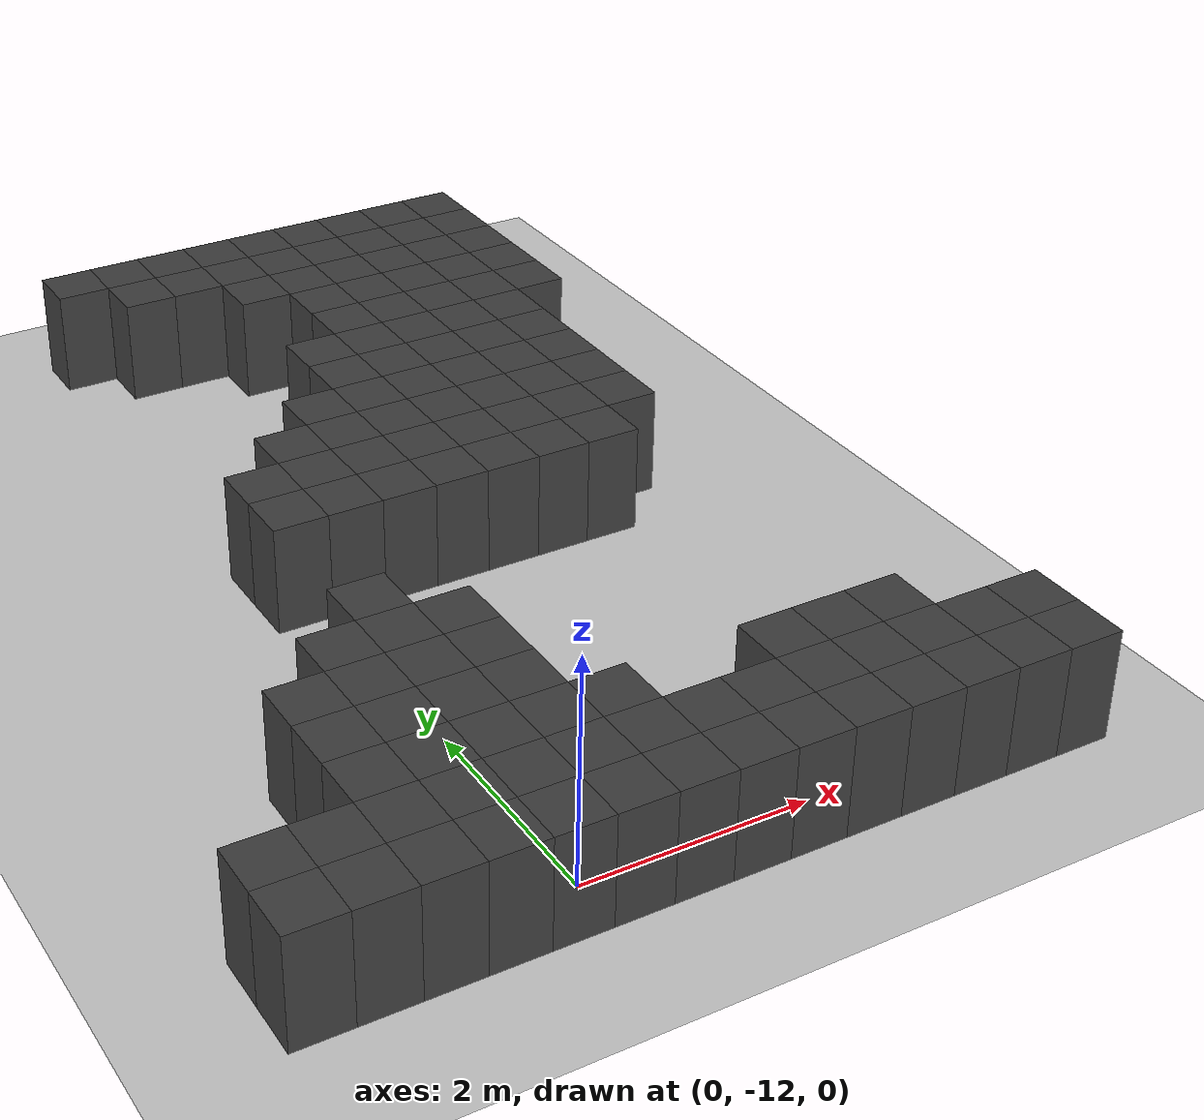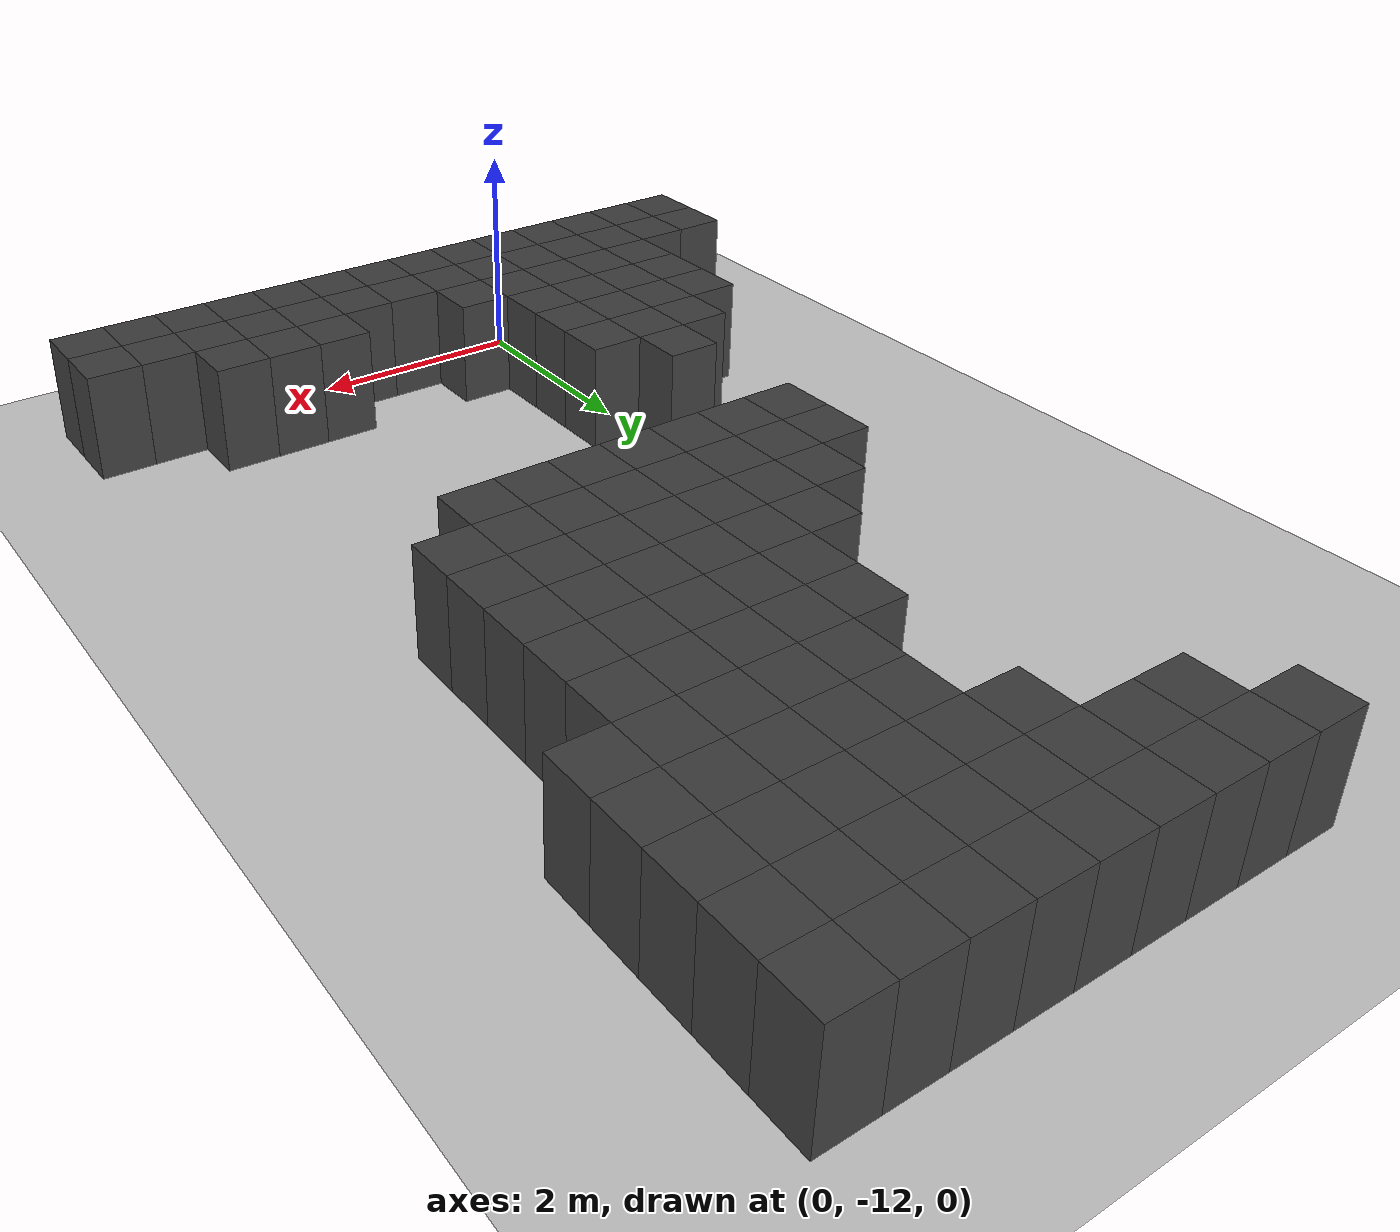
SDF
<sdf version="1.7">
 <world name="map_9705">
  <model name="ground_plane">
   <static>true</static>
   <link name="link">
    <collision name="collision">
     <geometry><plane><normal>0 0 1</normal><size>200 200</size></plane></geometry>
    </collision>
    <visual name="visual">
     <geometry><plane><normal>0 0 1</normal><size>200 200</size></plane></geometry>
     <material><ambient>0.8 0.8 0.8 1</ambient><diffuse>0.8 0.8 0.8 1</diffuse></material>
    </visual>
   </link>
  </model>
  <model name="maze_environment">
   <static>true</static>
   <link name="wall_679">
    <pose>-0.250 -2.750 0.500 0 0 0</pose>
    <collision name="col"><geometry><box><size>0.5 0.5 1.0</size></box></geometry></collision>
    <visual name="vis">
     <geometry><box><size>0.5 0.5 1.0</size></box></geometry>
     <material><ambient>0.15 0.15 0.15 1</ambient><diffuse>0.25 0.25 0.25 1</diffuse></material>
    </visual>
   </link>
   <link name="wall_680">
    <pose>0.250 -2.750 0.500 0 0 0</pose>
    <collision name="col"><geometry><box><size>0.5 0.5 1.0</size></box></geometry></collision>
    <visual name="vis">
     <geometry><box><size>0.5 0.5 1.0</size></box></geometry>
     <material><ambient>0.15 0.15 0.15 1</ambient><diffuse>0.25 0.25 0.25 1</diffuse></material>
    </visual>
   </link>
   <link name="wall_681">
    <pose>0.750 -2.750 0.500 0 0 0</pose>
    <collision name="col"><geometry><box><size>0.5 0.5 1.0</size></box></geometry></collision>
    <visual name="vis">
     <geometry><box><size>0.5 0.5 1.0</size></box></geometry>
     <material><ambient>0.15 0.15 0.15 1</ambient><diffuse>0.25 0.25 0.25 1</diffuse></material>
    </visual>
   </link>
   <link name="wall_682">
    <pose>1.250 -2.750 0.500 0 0 0</pose>
    <collision name="col"><geometry><box><size>0.5 0.5 1.0</size></box></geometry></collision>
    <visual name="vis">
     <geometry><box><size>0.5 0.5 1.0</size></box></geometry>
     <material><ambient>0.15 0.15 0.15 1</ambient><diffuse>0.25 0.25 0.25 1</diffuse></material>
    </visual>
   </link>
   <link name="wall_683">
    <pose>1.750 -2.750 0.500 0 0 0</pose>
    <collision name="col"><geometry><box><size>0.5 0.5 1.0</size></box></geometry></collision>
    <visual name="vis">
     <geometry><box><size>0.5 0.5 1.0</size></box></geometry>
     <material><ambient>0.15 0.15 0.15 1</ambient><diffuse>0.25 0.25 0.25 1</diffuse></material>
    </visual>
   </link>
   <link name="wall_684">
    <pose>2.250 -2.750 0.500 0 0 0</pose>
    <collision name="col"><geometry><box><size>0.5 0.5 1.0</size></box></geometry></collision>
    <visual name="vis">
     <geometry><box><size>0.5 0.5 1.0</size></box></geometry>
     <material><ambient>0.15 0.15 0.15 1</ambient><diffuse>0.25 0.25 0.25 1</diffuse></material>
    </visual>
   </link>
   <link name="wall_685">
    <pose>2.750 -2.750 0.500 0 0 0</pose>
    <collision name="col"><geometry><box><size>0.5 0.5 1.0</size></box></geometry></collision>
    <visual name="vis">
     <geometry><box><size>0.5 0.5 1.0</size></box></geometry>
     <material><ambient>0.15 0.15 0.15 1</ambient><diffuse>0.25 0.25 0.25 1</diffuse></material>
    </visual>
   </link>
   <link name="wall_686">
    <pose>3.250 -2.750 0.500 0 0 0</pose>
    <collision name="col"><geometry><box><size>0.5 0.5 1.0</size></box></geometry></collision>
    <visual name="vis">
     <geometry><box><size>0.5 0.5 1.0</size></box></geometry>
     <material><ambient>0.15 0.15 0.15 1</ambient><diffuse>0.25 0.25 0.25 1</diffuse></material>
    </visual>
   </link>
   <link name="wall_687">
    <pose>3.750 -2.750 0.500 0 0 0</pose>
    <collision name="col"><geometry><box><size>0.5 0.5 1.0</size></box></geometry></collision>
    <visual name="vis">
     <geometry><box><size>0.5 0.5 1.0</size></box></geometry>
     <material><ambient>0.15 0.15 0.15 1</ambient><diffuse>0.25 0.25 0.25 1</diffuse></material>
    </visual>
   </link>
   <link name="wall_698">
    <pose>0.250 -3.250 0.500 0 0 0</pose>
    <collision name="col"><geometry><box><size>0.5 0.5 1.0</size></box></geometry></collision>
    <visual name="vis">
     <geometry><box><size>0.5 0.5 1.0</size></box></geometry>
     <material><ambient>0.15 0.15 0.15 1</ambient><diffuse>0.25 0.25 0.25 1</diffuse></material>
    </visual>
   </link>
   <link name="wall_699">
    <pose>0.750 -3.250 0.500 0 0 0</pose>
    <collision name="col"><geometry><box><size>0.5 0.5 1.0</size></box></geometry></collision>
    <visual name="vis">
     <geometry><box><size>0.5 0.5 1.0</size></box></geometry>
     <material><ambient>0.15 0.15 0.15 1</ambient><diffuse>0.25 0.25 0.25 1</diffuse></material>
    </visual>
   </link>
   <link name="wall_700">
    <pose>1.250 -3.250 0.500 0 0 0</pose>
    <collision name="col"><geometry><box><size>0.5 0.5 1.0</size></box></geometry></collision>
    <visual name="vis">
     <geometry><box><size>0.5 0.5 1.0</size></box></geometry>
     <material><ambient>0.15 0.15 0.15 1</ambient><diffuse>0.25 0.25 0.25 1</diffuse></material>
    </visual>
   </link>
   <link name="wall_701">
    <pose>1.750 -3.250 0.500 0 0 0</pose>
    <collision name="col"><geometry><box><size>0.5 0.5 1.0</size></box></geometry></collision>
    <visual name="vis">
     <geometry><box><size>0.5 0.5 1.0</size></box></geometry>
     <material><ambient>0.15 0.15 0.15 1</ambient><diffuse>0.25 0.25 0.25 1</diffuse></material>
    </visual>
   </link>
   <link name="wall_702">
    <pose>2.250 -3.250 0.500 0 0 0</pose>
    <collision name="col"><geometry><box><size>0.5 0.5 1.0</size></box></geometry></collision>
    <visual name="vis">
     <geometry><box><size>0.5 0.5 1.0</size></box></geometry>
     <material><ambient>0.15 0.15 0.15 1</ambient><diffuse>0.25 0.25 0.25 1</diffuse></material>
    </visual>
   </link>
   <link name="wall_703">
    <pose>2.750 -3.250 0.500 0 0 0</pose>
    <collision name="col"><geometry><box><size>0.5 0.5 1.0</size></box></geometry></collision>
    <visual name="vis">
     <geometry><box><size>0.5 0.5 1.0</size></box></geometry>
     <material><ambient>0.15 0.15 0.15 1</ambient><diffuse>0.25 0.25 0.25 1</diffuse></material>
    </visual>
   </link>
   <link name="wall_704">
    <pose>3.250 -3.250 0.500 0 0 0</pose>
    <collision name="col"><geometry><box><size>0.5 0.5 1.0</size></box></geometry></collision>
    <visual name="vis">
     <geometry><box><size>0.5 0.5 1.0</size></box></geometry>
     <material><ambient>0.15 0.15 0.15 1</ambient><diffuse>0.25 0.25 0.25 1</diffuse></material>
    </visual>
   </link>
   <link name="wall_705">
    <pose>3.750 -3.250 0.500 0 0 0</pose>
    <collision name="col"><geometry><box><size>0.5 0.5 1.0</size></box></geometry></collision>
    <visual name="vis">
     <geometry><box><size>0.5 0.5 1.0</size></box></geometry>
     <material><ambient>0.15 0.15 0.15 1</ambient><diffuse>0.25 0.25 0.25 1</diffuse></material>
    </visual>
   </link>
   <link name="wall_711">
    <pose>1.250 -3.750 0.500 0 0 0</pose>
    <collision name="col"><geometry><box><size>0.5 0.5 1.0</size></box></geometry></collision>
    <visual name="vis">
     <geometry><box><size>0.5 0.5 1.0</size></box></geometry>
     <material><ambient>0.15 0.15 0.15 1</ambient><diffuse>0.25 0.25 0.25 1</diffuse></material>
    </visual>
   </link>
   <link name="wall_712">
    <pose>1.750 -3.750 0.500 0 0 0</pose>
    <collision name="col"><geometry><box><size>0.5 0.5 1.0</size></box></geometry></collision>
    <visual name="vis">
     <geometry><box><size>0.5 0.5 1.0</size></box></geometry>
     <material><ambient>0.15 0.15 0.15 1</ambient><diffuse>0.25 0.25 0.25 1</diffuse></material>
    </visual>
   </link>
   <link name="wall_713">
    <pose>2.250 -3.750 0.500 0 0 0</pose>
    <collision name="col"><geometry><box><size>0.5 0.5 1.0</size></box></geometry></collision>
    <visual name="vis">
     <geometry><box><size>0.5 0.5 1.0</size></box></geometry>
     <material><ambient>0.15 0.15 0.15 1</ambient><diffuse>0.25 0.25 0.25 1</diffuse></material>
    </visual>
   </link>
   <link name="wall_714">
    <pose>2.750 -3.750 0.500 0 0 0</pose>
    <collision name="col"><geometry><box><size>0.5 0.5 1.0</size></box></geometry></collision>
    <visual name="vis">
     <geometry><box><size>0.5 0.5 1.0</size></box></geometry>
     <material><ambient>0.15 0.15 0.15 1</ambient><diffuse>0.25 0.25 0.25 1</diffuse></material>
    </visual>
   </link>
   <link name="wall_715">
    <pose>3.250 -3.750 0.500 0 0 0</pose>
    <collision name="col"><geometry><box><size>0.5 0.5 1.0</size></box></geometry></collision>
    <visual name="vis">
     <geometry><box><size>0.5 0.5 1.0</size></box></geometry>
     <material><ambient>0.15 0.15 0.15 1</ambient><diffuse>0.25 0.25 0.25 1</diffuse></material>
    </visual>
   </link>
   <link name="wall_716">
    <pose>3.750 -3.750 0.500 0 0 0</pose>
    <collision name="col"><geometry><box><size>0.5 0.5 1.0</size></box></geometry></collision>
    <visual name="vis">
     <geometry><box><size>0.5 0.5 1.0</size></box></geometry>
     <material><ambient>0.15 0.15 0.15 1</ambient><diffuse>0.25 0.25 0.25 1</diffuse></material>
    </visual>
   </link>
   <link name="wall_721">
    <pose>1.750 -4.250 0.500 0 0 0</pose>
    <collision name="col"><geometry><box><size>0.5 0.5 1.0</size></box></geometry></collision>
    <visual name="vis">
     <geometry><box><size>0.5 0.5 1.0</size></box></geometry>
     <material><ambient>0.15 0.15 0.15 1</ambient><diffuse>0.25 0.25 0.25 1</diffuse></material>
    </visual>
   </link>
   <link name="wall_722">
    <pose>2.250 -4.250 0.500 0 0 0</pose>
    <collision name="col"><geometry><box><size>0.5 0.5 1.0</size></box></geometry></collision>
    <visual name="vis">
     <geometry><box><size>0.5 0.5 1.0</size></box></geometry>
     <material><ambient>0.15 0.15 0.15 1</ambient><diffuse>0.25 0.25 0.25 1</diffuse></material>
    </visual>
   </link>
   <link name="wall_723">
    <pose>2.750 -4.250 0.500 0 0 0</pose>
    <collision name="col"><geometry><box><size>0.5 0.5 1.0</size></box></geometry></collision>
    <visual name="vis">
     <geometry><box><size>0.5 0.5 1.0</size></box></geometry>
     <material><ambient>0.15 0.15 0.15 1</ambient><diffuse>0.25 0.25 0.25 1</diffuse></material>
    </visual>
   </link>
   <link name="wall_724">
    <pose>3.250 -4.250 0.500 0 0 0</pose>
    <collision name="col"><geometry><box><size>0.5 0.5 1.0</size></box></geometry></collision>
    <visual name="vis">
     <geometry><box><size>0.5 0.5 1.0</size></box></geometry>
     <material><ambient>0.15 0.15 0.15 1</ambient><diffuse>0.25 0.25 0.25 1</diffuse></material>
    </visual>
   </link>
   <link name="wall_725">
    <pose>3.750 -4.250 0.500 0 0 0</pose>
    <collision name="col"><geometry><box><size>0.5 0.5 1.0</size></box></geometry></collision>
    <visual name="vis">
     <geometry><box><size>0.5 0.5 1.0</size></box></geometry>
     <material><ambient>0.15 0.15 0.15 1</ambient><diffuse>0.25 0.25 0.25 1</diffuse></material>
    </visual>
   </link>
   <link name="wall_729">
    <pose>1.750 -4.750 0.500 0 0 0</pose>
    <collision name="col"><geometry><box><size>0.5 0.5 1.0</size></box></geometry></collision>
    <visual name="vis">
     <geometry><box><size>0.5 0.5 1.0</size></box></geometry>
     <material><ambient>0.15 0.15 0.15 1</ambient><diffuse>0.25 0.25 0.25 1</diffuse></material>
    </visual>
   </link>
   <link name="wall_730">
    <pose>2.250 -4.750 0.500 0 0 0</pose>
    <collision name="col"><geometry><box><size>0.5 0.5 1.0</size></box></geometry></collision>
    <visual name="vis">
     <geometry><box><size>0.5 0.5 1.0</size></box></geometry>
     <material><ambient>0.15 0.15 0.15 1</ambient><diffuse>0.25 0.25 0.25 1</diffuse></material>
    </visual>
   </link>
   <link name="wall_731">
    <pose>2.750 -4.750 0.500 0 0 0</pose>
    <collision name="col"><geometry><box><size>0.5 0.5 1.0</size></box></geometry></collision>
    <visual name="vis">
     <geometry><box><size>0.5 0.5 1.0</size></box></geometry>
     <material><ambient>0.15 0.15 0.15 1</ambient><diffuse>0.25 0.25 0.25 1</diffuse></material>
    </visual>
   </link>
   <link name="wall_732">
    <pose>3.250 -4.750 0.500 0 0 0</pose>
    <collision name="col"><geometry><box><size>0.5 0.5 1.0</size></box></geometry></collision>
    <visual name="vis">
     <geometry><box><size>0.5 0.5 1.0</size></box></geometry>
     <material><ambient>0.15 0.15 0.15 1</ambient><diffuse>0.25 0.25 0.25 1</diffuse></material>
    </visual>
   </link>
   <link name="wall_733">
    <pose>3.750 -4.750 0.500 0 0 0</pose>
    <collision name="col"><geometry><box><size>0.5 0.5 1.0</size></box></geometry></collision>
    <visual name="vis">
     <geometry><box><size>0.5 0.5 1.0</size></box></geometry>
     <material><ambient>0.15 0.15 0.15 1</ambient><diffuse>0.25 0.25 0.25 1</diffuse></material>
    </visual>
   </link>
   <link name="wall_741">
    <pose>1.250 -5.250 0.500 0 0 0</pose>
    <collision name="col"><geometry><box><size>0.5 0.5 1.0</size></box></geometry></collision>
    <visual name="vis">
     <geometry><box><size>0.5 0.5 1.0</size></box></geometry>
     <material><ambient>0.15 0.15 0.15 1</ambient><diffuse>0.25 0.25 0.25 1</diffuse></material>
    </visual>
   </link>
   <link name="wall_742">
    <pose>1.750 -5.250 0.500 0 0 0</pose>
    <collision name="col"><geometry><box><size>0.5 0.5 1.0</size></box></geometry></collision>
    <visual name="vis">
     <geometry><box><size>0.5 0.5 1.0</size></box></geometry>
     <material><ambient>0.15 0.15 0.15 1</ambient><diffuse>0.25 0.25 0.25 1</diffuse></material>
    </visual>
   </link>
   <link name="wall_743">
    <pose>2.250 -5.250 0.500 0 0 0</pose>
    <collision name="col"><geometry><box><size>0.5 0.5 1.0</size></box></geometry></collision>
    <visual name="vis">
     <geometry><box><size>0.5 0.5 1.0</size></box></geometry>
     <material><ambient>0.15 0.15 0.15 1</ambient><diffuse>0.25 0.25 0.25 1</diffuse></material>
    </visual>
   </link>
   <link name="wall_744">
    <pose>2.750 -5.250 0.500 0 0 0</pose>
    <collision name="col"><geometry><box><size>0.5 0.5 1.0</size></box></geometry></collision>
    <visual name="vis">
     <geometry><box><size>0.5 0.5 1.0</size></box></geometry>
     <material><ambient>0.15 0.15 0.15 1</ambient><diffuse>0.25 0.25 0.25 1</diffuse></material>
    </visual>
   </link>
   <link name="wall_745">
    <pose>3.250 -5.250 0.500 0 0 0</pose>
    <collision name="col"><geometry><box><size>0.5 0.5 1.0</size></box></geometry></collision>
    <visual name="vis">
     <geometry><box><size>0.5 0.5 1.0</size></box></geometry>
     <material><ambient>0.15 0.15 0.15 1</ambient><diffuse>0.25 0.25 0.25 1</diffuse></material>
    </visual>
   </link>
   <link name="wall_758">
    <pose>1.250 -5.750 0.500 0 0 0</pose>
    <collision name="col"><geometry><box><size>0.5 0.5 1.0</size></box></geometry></collision>
    <visual name="vis">
     <geometry><box><size>0.5 0.5 1.0</size></box></geometry>
     <material><ambient>0.15 0.15 0.15 1</ambient><diffuse>0.25 0.25 0.25 1</diffuse></material>
    </visual>
   </link>
   <link name="wall_759">
    <pose>1.750 -5.750 0.500 0 0 0</pose>
    <collision name="col"><geometry><box><size>0.5 0.5 1.0</size></box></geometry></collision>
    <visual name="vis">
     <geometry><box><size>0.5 0.5 1.0</size></box></geometry>
     <material><ambient>0.15 0.15 0.15 1</ambient><diffuse>0.25 0.25 0.25 1</diffuse></material>
    </visual>
   </link>
   <link name="wall_760">
    <pose>2.250 -5.750 0.500 0 0 0</pose>
    <collision name="col"><geometry><box><size>0.5 0.5 1.0</size></box></geometry></collision>
    <visual name="vis">
     <geometry><box><size>0.5 0.5 1.0</size></box></geometry>
     <material><ambient>0.15 0.15 0.15 1</ambient><diffuse>0.25 0.25 0.25 1</diffuse></material>
    </visual>
   </link>
   <link name="wall_761">
    <pose>2.750 -5.750 0.500 0 0 0</pose>
    <collision name="col"><geometry><box><size>0.5 0.5 1.0</size></box></geometry></collision>
    <visual name="vis">
     <geometry><box><size>0.5 0.5 1.0</size></box></geometry>
     <material><ambient>0.15 0.15 0.15 1</ambient><diffuse>0.25 0.25 0.25 1</diffuse></material>
    </visual>
   </link>
   <link name="wall_762">
    <pose>3.250 -5.750 0.500 0 0 0</pose>
    <collision name="col"><geometry><box><size>0.5 0.5 1.0</size></box></geometry></collision>
    <visual name="vis">
     <geometry><box><size>0.5 0.5 1.0</size></box></geometry>
     <material><ambient>0.15 0.15 0.15 1</ambient><diffuse>0.25 0.25 0.25 1</diffuse></material>
    </visual>
   </link>
   <link name="wall_776">
    <pose>0.750 -6.250 0.500 0 0 0</pose>
    <collision name="col"><geometry><box><size>0.5 0.5 1.0</size></box></geometry></collision>
    <visual name="vis">
     <geometry><box><size>0.5 0.5 1.0</size></box></geometry>
     <material><ambient>0.15 0.15 0.15 1</ambient><diffuse>0.25 0.25 0.25 1</diffuse></material>
    </visual>
   </link>
   <link name="wall_777">
    <pose>1.250 -6.250 0.500 0 0 0</pose>
    <collision name="col"><geometry><box><size>0.5 0.5 1.0</size></box></geometry></collision>
    <visual name="vis">
     <geometry><box><size>0.5 0.5 1.0</size></box></geometry>
     <material><ambient>0.15 0.15 0.15 1</ambient><diffuse>0.25 0.25 0.25 1</diffuse></material>
    </visual>
   </link>
   <link name="wall_778">
    <pose>1.750 -6.250 0.500 0 0 0</pose>
    <collision name="col"><geometry><box><size>0.5 0.5 1.0</size></box></geometry></collision>
    <visual name="vis">
     <geometry><box><size>0.5 0.5 1.0</size></box></geometry>
     <material><ambient>0.15 0.15 0.15 1</ambient><diffuse>0.25 0.25 0.25 1</diffuse></material>
    </visual>
   </link>
   <link name="wall_779">
    <pose>2.250 -6.250 0.500 0 0 0</pose>
    <collision name="col"><geometry><box><size>0.5 0.5 1.0</size></box></geometry></collision>
    <visual name="vis">
     <geometry><box><size>0.5 0.5 1.0</size></box></geometry>
     <material><ambient>0.15 0.15 0.15 1</ambient><diffuse>0.25 0.25 0.25 1</diffuse></material>
    </visual>
   </link>
   <link name="wall_780">
    <pose>2.750 -6.250 0.500 0 0 0</pose>
    <collision name="col"><geometry><box><size>0.5 0.5 1.0</size></box></geometry></collision>
    <visual name="vis">
     <geometry><box><size>0.5 0.5 1.0</size></box></geometry>
     <material><ambient>0.15 0.15 0.15 1</ambient><diffuse>0.25 0.25 0.25 1</diffuse></material>
    </visual>
   </link>
   <link name="wall_781">
    <pose>3.250 -6.250 0.500 0 0 0</pose>
    <collision name="col"><geometry><box><size>0.5 0.5 1.0</size></box></geometry></collision>
    <visual name="vis">
     <geometry><box><size>0.5 0.5 1.0</size></box></geometry>
     <material><ambient>0.15 0.15 0.15 1</ambient><diffuse>0.25 0.25 0.25 1</diffuse></material>
    </visual>
   </link>
   <link name="wall_795">
    <pose>0.250 -6.750 0.500 0 0 0</pose>
    <collision name="col"><geometry><box><size>0.5 0.5 1.0</size></box></geometry></collision>
    <visual name="vis">
     <geometry><box><size>0.5 0.5 1.0</size></box></geometry>
     <material><ambient>0.15 0.15 0.15 1</ambient><diffuse>0.25 0.25 0.25 1</diffuse></material>
    </visual>
   </link>
   <link name="wall_796">
    <pose>0.750 -6.750 0.500 0 0 0</pose>
    <collision name="col"><geometry><box><size>0.5 0.5 1.0</size></box></geometry></collision>
    <visual name="vis">
     <geometry><box><size>0.5 0.5 1.0</size></box></geometry>
     <material><ambient>0.15 0.15 0.15 1</ambient><diffuse>0.25 0.25 0.25 1</diffuse></material>
    </visual>
   </link>
   <link name="wall_797">
    <pose>1.250 -6.750 0.500 0 0 0</pose>
    <collision name="col"><geometry><box><size>0.5 0.5 1.0</size></box></geometry></collision>
    <visual name="vis">
     <geometry><box><size>0.5 0.5 1.0</size></box></geometry>
     <material><ambient>0.15 0.15 0.15 1</ambient><diffuse>0.25 0.25 0.25 1</diffuse></material>
    </visual>
   </link>
   <link name="wall_798">
    <pose>1.750 -6.750 0.500 0 0 0</pose>
    <collision name="col"><geometry><box><size>0.5 0.5 1.0</size></box></geometry></collision>
    <visual name="vis">
     <geometry><box><size>0.5 0.5 1.0</size></box></geometry>
     <material><ambient>0.15 0.15 0.15 1</ambient><diffuse>0.25 0.25 0.25 1</diffuse></material>
    </visual>
   </link>
   <link name="wall_799">
    <pose>2.250 -6.750 0.500 0 0 0</pose>
    <collision name="col"><geometry><box><size>0.5 0.5 1.0</size></box></geometry></collision>
    <visual name="vis">
     <geometry><box><size>0.5 0.5 1.0</size></box></geometry>
     <material><ambient>0.15 0.15 0.15 1</ambient><diffuse>0.25 0.25 0.25 1</diffuse></material>
    </visual>
   </link>
   <link name="wall_800">
    <pose>2.750 -6.750 0.500 0 0 0</pose>
    <collision name="col"><geometry><box><size>0.5 0.5 1.0</size></box></geometry></collision>
    <visual name="vis">
     <geometry><box><size>0.5 0.5 1.0</size></box></geometry>
     <material><ambient>0.15 0.15 0.15 1</ambient><diffuse>0.25 0.25 0.25 1</diffuse></material>
    </visual>
   </link>
   <link name="wall_801">
    <pose>3.250 -6.750 0.500 0 0 0</pose>
    <collision name="col"><geometry><box><size>0.5 0.5 1.0</size></box></geometry></collision>
    <visual name="vis">
     <geometry><box><size>0.5 0.5 1.0</size></box></geometry>
     <material><ambient>0.15 0.15 0.15 1</ambient><diffuse>0.25 0.25 0.25 1</diffuse></material>
    </visual>
   </link>
   <link name="wall_820">
    <pose>-0.250 -7.250 0.500 0 0 0</pose>
    <collision name="col"><geometry><box><size>0.5 0.5 1.0</size></box></geometry></collision>
    <visual name="vis">
     <geometry><box><size>0.5 0.5 1.0</size></box></geometry>
     <material><ambient>0.15 0.15 0.15 1</ambient><diffuse>0.25 0.25 0.25 1</diffuse></material>
    </visual>
   </link>
   <link name="wall_821">
    <pose>0.250 -7.250 0.500 0 0 0</pose>
    <collision name="col"><geometry><box><size>0.5 0.5 1.0</size></box></geometry></collision>
    <visual name="vis">
     <geometry><box><size>0.5 0.5 1.0</size></box></geometry>
     <material><ambient>0.15 0.15 0.15 1</ambient><diffuse>0.25 0.25 0.25 1</diffuse></material>
    </visual>
   </link>
   <link name="wall_822">
    <pose>0.750 -7.250 0.500 0 0 0</pose>
    <collision name="col"><geometry><box><size>0.5 0.5 1.0</size></box></geometry></collision>
    <visual name="vis">
     <geometry><box><size>0.5 0.5 1.0</size></box></geometry>
     <material><ambient>0.15 0.15 0.15 1</ambient><diffuse>0.25 0.25 0.25 1</diffuse></material>
    </visual>
   </link>
   <link name="wall_823">
    <pose>1.250 -7.250 0.500 0 0 0</pose>
    <collision name="col"><geometry><box><size>0.5 0.5 1.0</size></box></geometry></collision>
    <visual name="vis">
     <geometry><box><size>0.5 0.5 1.0</size></box></geometry>
     <material><ambient>0.15 0.15 0.15 1</ambient><diffuse>0.25 0.25 0.25 1</diffuse></material>
    </visual>
   </link>
   <link name="wall_824">
    <pose>1.750 -7.250 0.500 0 0 0</pose>
    <collision name="col"><geometry><box><size>0.5 0.5 1.0</size></box></geometry></collision>
    <visual name="vis">
     <geometry><box><size>0.5 0.5 1.0</size></box></geometry>
     <material><ambient>0.15 0.15 0.15 1</ambient><diffuse>0.25 0.25 0.25 1</diffuse></material>
    </visual>
   </link>
   <link name="wall_825">
    <pose>2.250 -7.250 0.500 0 0 0</pose>
    <collision name="col"><geometry><box><size>0.5 0.5 1.0</size></box></geometry></collision>
    <visual name="vis">
     <geometry><box><size>0.5 0.5 1.0</size></box></geometry>
     <material><ambient>0.15 0.15 0.15 1</ambient><diffuse>0.25 0.25 0.25 1</diffuse></material>
    </visual>
   </link>
   <link name="wall_826">
    <pose>2.750 -7.250 0.500 0 0 0</pose>
    <collision name="col"><geometry><box><size>0.5 0.5 1.0</size></box></geometry></collision>
    <visual name="vis">
     <geometry><box><size>0.5 0.5 1.0</size></box></geometry>
     <material><ambient>0.15 0.15 0.15 1</ambient><diffuse>0.25 0.25 0.25 1</diffuse></material>
    </visual>
   </link>
   <link name="wall_827">
    <pose>3.250 -7.250 0.500 0 0 0</pose>
    <collision name="col"><geometry><box><size>0.5 0.5 1.0</size></box></geometry></collision>
    <visual name="vis">
     <geometry><box><size>0.5 0.5 1.0</size></box></geometry>
     <material><ambient>0.15 0.15 0.15 1</ambient><diffuse>0.25 0.25 0.25 1</diffuse></material>
    </visual>
   </link>
   <link name="wall_845">
    <pose>-0.250 -7.750 0.500 0 0 0</pose>
    <collision name="col"><geometry><box><size>0.5 0.5 1.0</size></box></geometry></collision>
    <visual name="vis">
     <geometry><box><size>0.5 0.5 1.0</size></box></geometry>
     <material><ambient>0.15 0.15 0.15 1</ambient><diffuse>0.25 0.25 0.25 1</diffuse></material>
    </visual>
   </link>
   <link name="wall_846">
    <pose>0.250 -7.750 0.500 0 0 0</pose>
    <collision name="col"><geometry><box><size>0.5 0.5 1.0</size></box></geometry></collision>
    <visual name="vis">
     <geometry><box><size>0.5 0.5 1.0</size></box></geometry>
     <material><ambient>0.15 0.15 0.15 1</ambient><diffuse>0.25 0.25 0.25 1</diffuse></material>
    </visual>
   </link>
   <link name="wall_847">
    <pose>0.750 -7.750 0.500 0 0 0</pose>
    <collision name="col"><geometry><box><size>0.5 0.5 1.0</size></box></geometry></collision>
    <visual name="vis">
     <geometry><box><size>0.5 0.5 1.0</size></box></geometry>
     <material><ambient>0.15 0.15 0.15 1</ambient><diffuse>0.25 0.25 0.25 1</diffuse></material>
    </visual>
   </link>
   <link name="wall_848">
    <pose>1.250 -7.750 0.500 0 0 0</pose>
    <collision name="col"><geometry><box><size>0.5 0.5 1.0</size></box></geometry></collision>
    <visual name="vis">
     <geometry><box><size>0.5 0.5 1.0</size></box></geometry>
     <material><ambient>0.15 0.15 0.15 1</ambient><diffuse>0.25 0.25 0.25 1</diffuse></material>
    </visual>
   </link>
   <link name="wall_849">
    <pose>1.750 -7.750 0.500 0 0 0</pose>
    <collision name="col"><geometry><box><size>0.5 0.5 1.0</size></box></geometry></collision>
    <visual name="vis">
     <geometry><box><size>0.5 0.5 1.0</size></box></geometry>
     <material><ambient>0.15 0.15 0.15 1</ambient><diffuse>0.25 0.25 0.25 1</diffuse></material>
    </visual>
   </link>
   <link name="wall_850">
    <pose>2.250 -7.750 0.500 0 0 0</pose>
    <collision name="col"><geometry><box><size>0.5 0.5 1.0</size></box></geometry></collision>
    <visual name="vis">
     <geometry><box><size>0.5 0.5 1.0</size></box></geometry>
     <material><ambient>0.15 0.15 0.15 1</ambient><diffuse>0.25 0.25 0.25 1</diffuse></material>
    </visual>
   </link>
   <link name="wall_851">
    <pose>2.750 -7.750 0.500 0 0 0</pose>
    <collision name="col"><geometry><box><size>0.5 0.5 1.0</size></box></geometry></collision>
    <visual name="vis">
     <geometry><box><size>0.5 0.5 1.0</size></box></geometry>
     <material><ambient>0.15 0.15 0.15 1</ambient><diffuse>0.25 0.25 0.25 1</diffuse></material>
    </visual>
   </link>
   <link name="wall_891">
    <pose>-0.250 -9.250 0.500 0 0 0</pose>
    <collision name="col"><geometry><box><size>0.5 0.5 1.0</size></box></geometry></collision>
    <visual name="vis">
     <geometry><box><size>0.5 0.5 1.0</size></box></geometry>
     <material><ambient>0.15 0.15 0.15 1</ambient><diffuse>0.25 0.25 0.25 1</diffuse></material>
    </visual>
   </link>
   <link name="wall_903">
    <pose>-0.750 -9.750 0.500 0 0 0</pose>
    <collision name="col"><geometry><box><size>0.5 0.5 1.0</size></box></geometry></collision>
    <visual name="vis">
     <geometry><box><size>0.5 0.5 1.0</size></box></geometry>
     <material><ambient>0.15 0.15 0.15 1</ambient><diffuse>0.25 0.25 0.25 1</diffuse></material>
    </visual>
   </link>
   <link name="wall_904">
    <pose>-0.250 -9.750 0.500 0 0 0</pose>
    <collision name="col"><geometry><box><size>0.5 0.5 1.0</size></box></geometry></collision>
    <visual name="vis">
     <geometry><box><size>0.5 0.5 1.0</size></box></geometry>
     <material><ambient>0.15 0.15 0.15 1</ambient><diffuse>0.25 0.25 0.25 1</diffuse></material>
    </visual>
   </link>
   <link name="wall_905">
    <pose>0.250 -9.750 0.500 0 0 0</pose>
    <collision name="col"><geometry><box><size>0.5 0.5 1.0</size></box></geometry></collision>
    <visual name="vis">
     <geometry><box><size>0.5 0.5 1.0</size></box></geometry>
     <material><ambient>0.15 0.15 0.15 1</ambient><diffuse>0.25 0.25 0.25 1</diffuse></material>
    </visual>
   </link>
   <link name="wall_920">
    <pose>-1.250 -10.250 0.500 0 0 0</pose>
    <collision name="col"><geometry><box><size>0.5 0.5 1.0</size></box></geometry></collision>
    <visual name="vis">
     <geometry><box><size>0.5 0.5 1.0</size></box></geometry>
     <material><ambient>0.15 0.15 0.15 1</ambient><diffuse>0.25 0.25 0.25 1</diffuse></material>
    </visual>
   </link>
   <link name="wall_921">
    <pose>-0.750 -10.250 0.500 0 0 0</pose>
    <collision name="col"><geometry><box><size>0.5 0.5 1.0</size></box></geometry></collision>
    <visual name="vis">
     <geometry><box><size>0.5 0.5 1.0</size></box></geometry>
     <material><ambient>0.15 0.15 0.15 1</ambient><diffuse>0.25 0.25 0.25 1</diffuse></material>
    </visual>
   </link>
   <link name="wall_922">
    <pose>-0.250 -10.250 0.500 0 0 0</pose>
    <collision name="col"><geometry><box><size>0.5 0.5 1.0</size></box></geometry></collision>
    <visual name="vis">
     <geometry><box><size>0.5 0.5 1.0</size></box></geometry>
     <material><ambient>0.15 0.15 0.15 1</ambient><diffuse>0.25 0.25 0.25 1</diffuse></material>
    </visual>
   </link>
   <link name="wall_923">
    <pose>0.250 -10.250 0.500 0 0 0</pose>
    <collision name="col"><geometry><box><size>0.5 0.5 1.0</size></box></geometry></collision>
    <visual name="vis">
     <geometry><box><size>0.5 0.5 1.0</size></box></geometry>
     <material><ambient>0.15 0.15 0.15 1</ambient><diffuse>0.25 0.25 0.25 1</diffuse></material>
    </visual>
   </link>
   <link name="wall_940">
    <pose>-1.250 -10.750 0.500 0 0 0</pose>
    <collision name="col"><geometry><box><size>0.5 0.5 1.0</size></box></geometry></collision>
    <visual name="vis">
     <geometry><box><size>0.5 0.5 1.0</size></box></geometry>
     <material><ambient>0.15 0.15 0.15 1</ambient><diffuse>0.25 0.25 0.25 1</diffuse></material>
    </visual>
   </link>
   <link name="wall_941">
    <pose>-0.750 -10.750 0.500 0 0 0</pose>
    <collision name="col"><geometry><box><size>0.5 0.5 1.0</size></box></geometry></collision>
    <visual name="vis">
     <geometry><box><size>0.5 0.5 1.0</size></box></geometry>
     <material><ambient>0.15 0.15 0.15 1</ambient><diffuse>0.25 0.25 0.25 1</diffuse></material>
    </visual>
   </link>
   <link name="wall_942">
    <pose>-0.250 -10.750 0.500 0 0 0</pose>
    <collision name="col"><geometry><box><size>0.5 0.5 1.0</size></box></geometry></collision>
    <visual name="vis">
     <geometry><box><size>0.5 0.5 1.0</size></box></geometry>
     <material><ambient>0.15 0.15 0.15 1</ambient><diffuse>0.25 0.25 0.25 1</diffuse></material>
    </visual>
   </link>
   <link name="wall_943">
    <pose>0.250 -10.750 0.500 0 0 0</pose>
    <collision name="col"><geometry><box><size>0.5 0.5 1.0</size></box></geometry></collision>
    <visual name="vis">
     <geometry><box><size>0.5 0.5 1.0</size></box></geometry>
     <material><ambient>0.15 0.15 0.15 1</ambient><diffuse>0.25 0.25 0.25 1</diffuse></material>
    </visual>
   </link>
   <link name="wall_963">
    <pose>-1.250 -11.250 0.500 0 0 0</pose>
    <collision name="col"><geometry><box><size>0.5 0.5 1.0</size></box></geometry></collision>
    <visual name="vis">
     <geometry><box><size>0.5 0.5 1.0</size></box></geometry>
     <material><ambient>0.15 0.15 0.15 1</ambient><diffuse>0.25 0.25 0.25 1</diffuse></material>
    </visual>
   </link>
   <link name="wall_964">
    <pose>-0.750 -11.250 0.500 0 0 0</pose>
    <collision name="col"><geometry><box><size>0.5 0.5 1.0</size></box></geometry></collision>
    <visual name="vis">
     <geometry><box><size>0.5 0.5 1.0</size></box></geometry>
     <material><ambient>0.15 0.15 0.15 1</ambient><diffuse>0.25 0.25 0.25 1</diffuse></material>
    </visual>
   </link>
   <link name="wall_965">
    <pose>-0.250 -11.250 0.500 0 0 0</pose>
    <collision name="col"><geometry><box><size>0.5 0.5 1.0</size></box></geometry></collision>
    <visual name="vis">
     <geometry><box><size>0.5 0.5 1.0</size></box></geometry>
     <material><ambient>0.15 0.15 0.15 1</ambient><diffuse>0.25 0.25 0.25 1</diffuse></material>
    </visual>
   </link>
   <link name="wall_966">
    <pose>0.250 -11.250 0.500 0 0 0</pose>
    <collision name="col"><geometry><box><size>0.5 0.5 1.0</size></box></geometry></collision>
    <visual name="vis">
     <geometry><box><size>0.5 0.5 1.0</size></box></geometry>
     <material><ambient>0.15 0.15 0.15 1</ambient><diffuse>0.25 0.25 0.25 1</diffuse></material>
    </visual>
   </link>
   <link name="wall_967">
    <pose>0.750 -11.250 0.500 0 0 0</pose>
    <collision name="col"><geometry><box><size>0.5 0.5 1.0</size></box></geometry></collision>
    <visual name="vis">
     <geometry><box><size>0.5 0.5 1.0</size></box></geometry>
     <material><ambient>0.15 0.15 0.15 1</ambient><diffuse>0.25 0.25 0.25 1</diffuse></material>
    </visual>
   </link>
   <link name="wall_968">
    <pose>2.250 -11.250 0.500 0 0 0</pose>
    <collision name="col"><geometry><box><size>0.5 0.5 1.0</size></box></geometry></collision>
    <visual name="vis">
     <geometry><box><size>0.5 0.5 1.0</size></box></geometry>
     <material><ambient>0.15 0.15 0.15 1</ambient><diffuse>0.25 0.25 0.25 1</diffuse></material>
    </visual>
   </link>
   <link name="wall_969">
    <pose>2.750 -11.250 0.500 0 0 0</pose>
    <collision name="col"><geometry><box><size>0.5 0.5 1.0</size></box></geometry></collision>
    <visual name="vis">
     <geometry><box><size>0.5 0.5 1.0</size></box></geometry>
     <material><ambient>0.15 0.15 0.15 1</ambient><diffuse>0.25 0.25 0.25 1</diffuse></material>
    </visual>
   </link>
   <link name="wall_970">
    <pose>3.250 -11.250 0.500 0 0 0</pose>
    <collision name="col"><geometry><box><size>0.5 0.5 1.0</size></box></geometry></collision>
    <visual name="vis">
     <geometry><box><size>0.5 0.5 1.0</size></box></geometry>
     <material><ambient>0.15 0.15 0.15 1</ambient><diffuse>0.25 0.25 0.25 1</diffuse></material>
    </visual>
   </link>
   <link name="wall_994">
    <pose>-2.250 -11.750 0.500 0 0 0</pose>
    <collision name="col"><geometry><box><size>0.5 0.5 1.0</size></box></geometry></collision>
    <visual name="vis">
     <geometry><box><size>0.5 0.5 1.0</size></box></geometry>
     <material><ambient>0.15 0.15 0.15 1</ambient><diffuse>0.25 0.25 0.25 1</diffuse></material>
    </visual>
   </link>
   <link name="wall_995">
    <pose>-1.750 -11.750 0.500 0 0 0</pose>
    <collision name="col"><geometry><box><size>0.5 0.5 1.0</size></box></geometry></collision>
    <visual name="vis">
     <geometry><box><size>0.5 0.5 1.0</size></box></geometry>
     <material><ambient>0.15 0.15 0.15 1</ambient><diffuse>0.25 0.25 0.25 1</diffuse></material>
    </visual>
   </link>
   <link name="wall_996">
    <pose>-1.250 -11.750 0.500 0 0 0</pose>
    <collision name="col"><geometry><box><size>0.5 0.5 1.0</size></box></geometry></collision>
    <visual name="vis">
     <geometry><box><size>0.5 0.5 1.0</size></box></geometry>
     <material><ambient>0.15 0.15 0.15 1</ambient><diffuse>0.25 0.25 0.25 1</diffuse></material>
    </visual>
   </link>
   <link name="wall_997">
    <pose>-0.750 -11.750 0.500 0 0 0</pose>
    <collision name="col"><geometry><box><size>0.5 0.5 1.0</size></box></geometry></collision>
    <visual name="vis">
     <geometry><box><size>0.5 0.5 1.0</size></box></geometry>
     <material><ambient>0.15 0.15 0.15 1</ambient><diffuse>0.25 0.25 0.25 1</diffuse></material>
    </visual>
   </link>
   <link name="wall_998">
    <pose>-0.250 -11.750 0.500 0 0 0</pose>
    <collision name="col"><geometry><box><size>0.5 0.5 1.0</size></box></geometry></collision>
    <visual name="vis">
     <geometry><box><size>0.5 0.5 1.0</size></box></geometry>
     <material><ambient>0.15 0.15 0.15 1</ambient><diffuse>0.25 0.25 0.25 1</diffuse></material>
    </visual>
   </link>
   <link name="wall_999">
    <pose>0.250 -11.750 0.500 0 0 0</pose>
    <collision name="col"><geometry><box><size>0.5 0.5 1.0</size></box></geometry></collision>
    <visual name="vis">
     <geometry><box><size>0.5 0.5 1.0</size></box></geometry>
     <material><ambient>0.15 0.15 0.15 1</ambient><diffuse>0.25 0.25 0.25 1</diffuse></material>
    </visual>
   </link>
   <link name="wall_1000">
    <pose>0.750 -11.750 0.500 0 0 0</pose>
    <collision name="col"><geometry><box><size>0.5 0.5 1.0</size></box></geometry></collision>
    <visual name="vis">
     <geometry><box><size>0.5 0.5 1.0</size></box></geometry>
     <material><ambient>0.15 0.15 0.15 1</ambient><diffuse>0.25 0.25 0.25 1</diffuse></material>
    </visual>
   </link>
   <link name="wall_1001">
    <pose>1.250 -11.750 0.500 0 0 0</pose>
    <collision name="col"><geometry><box><size>0.5 0.5 1.0</size></box></geometry></collision>
    <visual name="vis">
     <geometry><box><size>0.5 0.5 1.0</size></box></geometry>
     <material><ambient>0.15 0.15 0.15 1</ambient><diffuse>0.25 0.25 0.25 1</diffuse></material>
    </visual>
   </link>
   <link name="wall_1002">
    <pose>1.750 -11.750 0.500 0 0 0</pose>
    <collision name="col"><geometry><box><size>0.5 0.5 1.0</size></box></geometry></collision>
    <visual name="vis">
     <geometry><box><size>0.5 0.5 1.0</size></box></geometry>
     <material><ambient>0.15 0.15 0.15 1</ambient><diffuse>0.25 0.25 0.25 1</diffuse></material>
    </visual>
   </link>
   <link name="wall_1003">
    <pose>2.250 -11.750 0.500 0 0 0</pose>
    <collision name="col"><geometry><box><size>0.5 0.5 1.0</size></box></geometry></collision>
    <visual name="vis">
     <geometry><box><size>0.5 0.5 1.0</size></box></geometry>
     <material><ambient>0.15 0.15 0.15 1</ambient><diffuse>0.25 0.25 0.25 1</diffuse></material>
    </visual>
   </link>
   <link name="wall_1004">
    <pose>2.750 -11.750 0.500 0 0 0</pose>
    <collision name="col"><geometry><box><size>0.5 0.5 1.0</size></box></geometry></collision>
    <visual name="vis">
     <geometry><box><size>0.5 0.5 1.0</size></box></geometry>
     <material><ambient>0.15 0.15 0.15 1</ambient><diffuse>0.25 0.25 0.25 1</diffuse></material>
    </visual>
   </link>
   <link name="wall_1005">
    <pose>3.250 -11.750 0.500 0 0 0</pose>
    <collision name="col"><geometry><box><size>0.5 0.5 1.0</size></box></geometry></collision>
    <visual name="vis">
     <geometry><box><size>0.5 0.5 1.0</size></box></geometry>
     <material><ambient>0.15 0.15 0.15 1</ambient><diffuse>0.25 0.25 0.25 1</diffuse></material>
    </visual>
   </link>
   <link name="wall_1006">
    <pose>3.750 -11.750 0.500 0 0 0</pose>
    <collision name="col"><geometry><box><size>0.5 0.5 1.0</size></box></geometry></collision>
    <visual name="vis">
     <geometry><box><size>0.5 0.5 1.0</size></box></geometry>
     <material><ambient>0.15 0.15 0.15 1</ambient><diffuse>0.25 0.25 0.25 1</diffuse></material>
    </visual>
   </link>
   <link name="wall_1007">
    <pose>4.250 -11.750 0.500 0 0 0</pose>
    <collision name="col"><geometry><box><size>0.5 0.5 1.0</size></box></geometry></collision>
    <visual name="vis">
     <geometry><box><size>0.5 0.5 1.0</size></box></geometry>
     <material><ambient>0.15 0.15 0.15 1</ambient><diffuse>0.25 0.25 0.25 1</diffuse></material>
    </visual>
   </link>
   <link name="wall_1039">
    <pose>-2.250 -12.250 0.500 0 0 0</pose>
    <collision name="col"><geometry><box><size>0.5 0.5 1.0</size></box></geometry></collision>
    <visual name="vis">
     <geometry><box><size>0.5 0.5 1.0</size></box></geometry>
     <material><ambient>0.15 0.15 0.15 1</ambient><diffuse>0.25 0.25 0.25 1</diffuse></material>
    </visual>
   </link>
   <link name="wall_1040">
    <pose>-1.750 -12.250 0.500 0 0 0</pose>
    <collision name="col"><geometry><box><size>0.5 0.5 1.0</size></box></geometry></collision>
    <visual name="vis">
     <geometry><box><size>0.5 0.5 1.0</size></box></geometry>
     <material><ambient>0.15 0.15 0.15 1</ambient><diffuse>0.25 0.25 0.25 1</diffuse></material>
    </visual>
   </link>
   <link name="wall_1041">
    <pose>-1.250 -12.250 0.500 0 0 0</pose>
    <collision name="col"><geometry><box><size>0.5 0.5 1.0</size></box></geometry></collision>
    <visual name="vis">
     <geometry><box><size>0.5 0.5 1.0</size></box></geometry>
     <material><ambient>0.15 0.15 0.15 1</ambient><diffuse>0.25 0.25 0.25 1</diffuse></material>
    </visual>
   </link>
   <link name="wall_1042">
    <pose>-0.750 -12.250 0.500 0 0 0</pose>
    <collision name="col"><geometry><box><size>0.5 0.5 1.0</size></box></geometry></collision>
    <visual name="vis">
     <geometry><box><size>0.5 0.5 1.0</size></box></geometry>
     <material><ambient>0.15 0.15 0.15 1</ambient><diffuse>0.25 0.25 0.25 1</diffuse></material>
    </visual>
   </link>
   <link name="wall_1043">
    <pose>-0.250 -12.250 0.500 0 0 0</pose>
    <collision name="col"><geometry><box><size>0.5 0.5 1.0</size></box></geometry></collision>
    <visual name="vis">
     <geometry><box><size>0.5 0.5 1.0</size></box></geometry>
     <material><ambient>0.15 0.15 0.15 1</ambient><diffuse>0.25 0.25 0.25 1</diffuse></material>
    </visual>
   </link>
   <link name="wall_1044">
    <pose>0.250 -12.250 0.500 0 0 0</pose>
    <collision name="col"><geometry><box><size>0.5 0.5 1.0</size></box></geometry></collision>
    <visual name="vis">
     <geometry><box><size>0.5 0.5 1.0</size></box></geometry>
     <material><ambient>0.15 0.15 0.15 1</ambient><diffuse>0.25 0.25 0.25 1</diffuse></material>
    </visual>
   </link>
   <link name="wall_1045">
    <pose>0.750 -12.250 0.500 0 0 0</pose>
    <collision name="col"><geometry><box><size>0.5 0.5 1.0</size></box></geometry></collision>
    <visual name="vis">
     <geometry><box><size>0.5 0.5 1.0</size></box></geometry>
     <material><ambient>0.15 0.15 0.15 1</ambient><diffuse>0.25 0.25 0.25 1</diffuse></material>
    </visual>
   </link>
   <link name="wall_1046">
    <pose>1.250 -12.250 0.500 0 0 0</pose>
    <collision name="col"><geometry><box><size>0.5 0.5 1.0</size></box></geometry></collision>
    <visual name="vis">
     <geometry><box><size>0.5 0.5 1.0</size></box></geometry>
     <material><ambient>0.15 0.15 0.15 1</ambient><diffuse>0.25 0.25 0.25 1</diffuse></material>
    </visual>
   </link>
   <link name="wall_1047">
    <pose>1.750 -12.250 0.500 0 0 0</pose>
    <collision name="col"><geometry><box><size>0.5 0.5 1.0</size></box></geometry></collision>
    <visual name="vis">
     <geometry><box><size>0.5 0.5 1.0</size></box></geometry>
     <material><ambient>0.15 0.15 0.15 1</ambient><diffuse>0.25 0.25 0.25 1</diffuse></material>
    </visual>
   </link>
   <link name="wall_1048">
    <pose>2.250 -12.250 0.500 0 0 0</pose>
    <collision name="col"><geometry><box><size>0.5 0.5 1.0</size></box></geometry></collision>
    <visual name="vis">
     <geometry><box><size>0.5 0.5 1.0</size></box></geometry>
     <material><ambient>0.15 0.15 0.15 1</ambient><diffuse>0.25 0.25 0.25 1</diffuse></material>
    </visual>
   </link>
   <link name="wall_1049">
    <pose>2.750 -12.250 0.500 0 0 0</pose>
    <collision name="col"><geometry><box><size>0.5 0.5 1.0</size></box></geometry></collision>
    <visual name="vis">
     <geometry><box><size>0.5 0.5 1.0</size></box></geometry>
     <material><ambient>0.15 0.15 0.15 1</ambient><diffuse>0.25 0.25 0.25 1</diffuse></material>
    </visual>
   </link>
   <link name="wall_1050">
    <pose>3.250 -12.250 0.500 0 0 0</pose>
    <collision name="col"><geometry><box><size>0.5 0.5 1.0</size></box></geometry></collision>
    <visual name="vis">
     <geometry><box><size>0.5 0.5 1.0</size></box></geometry>
     <material><ambient>0.15 0.15 0.15 1</ambient><diffuse>0.25 0.25 0.25 1</diffuse></material>
    </visual>
   </link>
   <link name="wall_1051">
    <pose>3.750 -12.250 0.500 0 0 0</pose>
    <collision name="col"><geometry><box><size>0.5 0.5 1.0</size></box></geometry></collision>
    <visual name="vis">
     <geometry><box><size>0.5 0.5 1.0</size></box></geometry>
     <material><ambient>0.15 0.15 0.15 1</ambient><diffuse>0.25 0.25 0.25 1</diffuse></material>
    </visual>
   </link>
   <link name="wall_1052">
    <pose>4.250 -12.250 0.500 0 0 0</pose>
    <collision name="col"><geometry><box><size>0.5 0.5 1.0</size></box></geometry></collision>
    <visual name="vis">
     <geometry><box><size>0.5 0.5 1.0</size></box></geometry>
     <material><ambient>0.15 0.15 0.15 1</ambient><diffuse>0.25 0.25 0.25 1</diffuse></material>
    </visual>
   </link>
  </model>
 </world>
</sdf>
